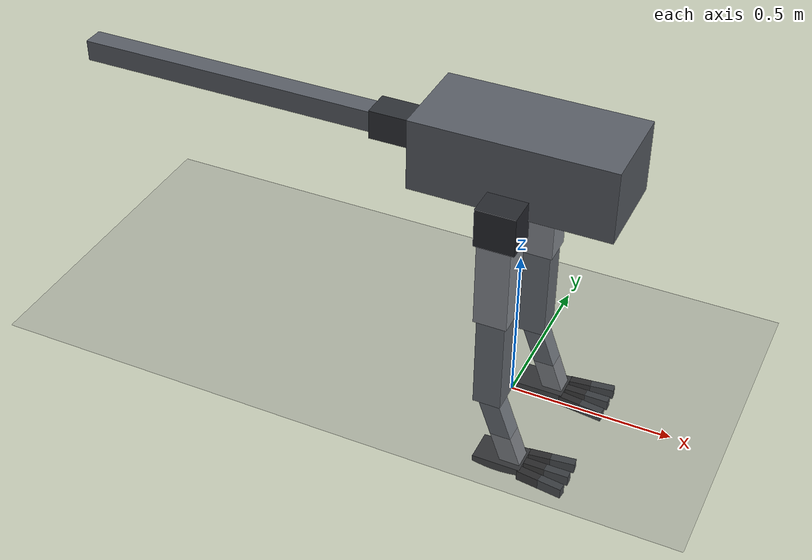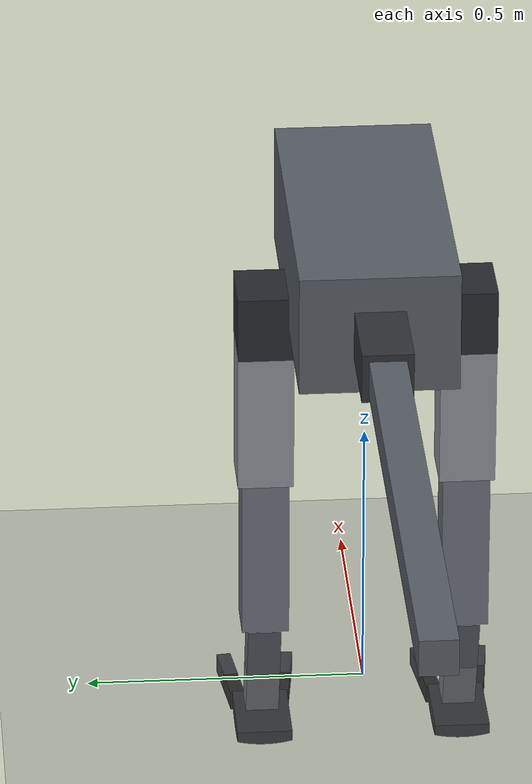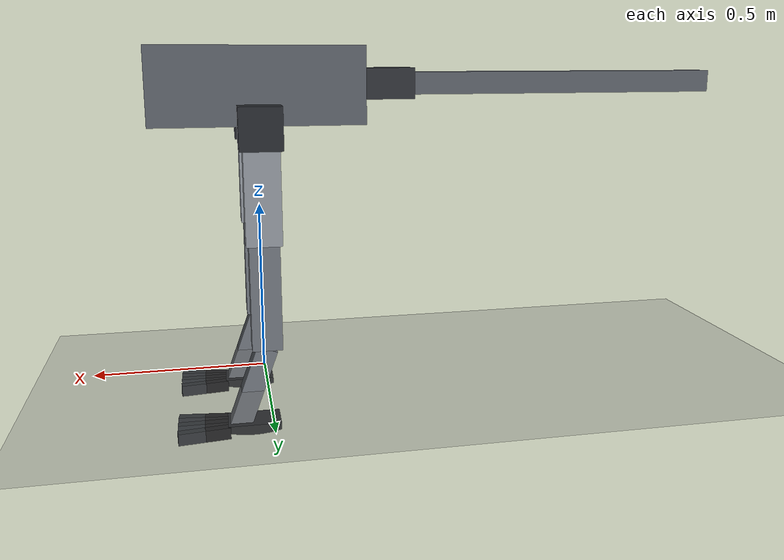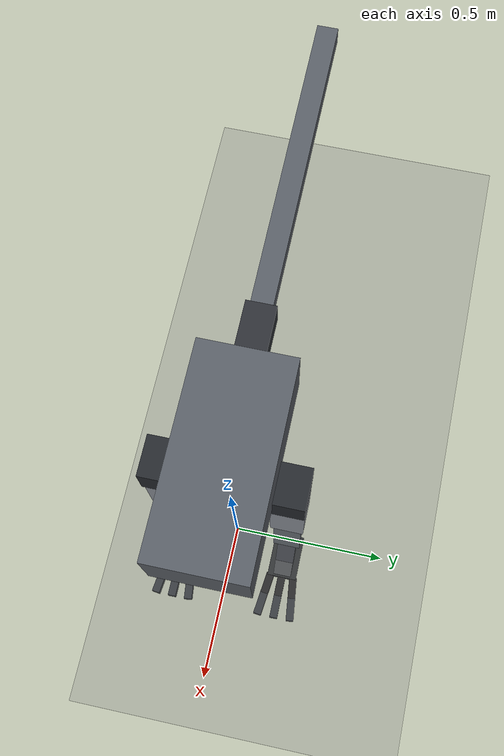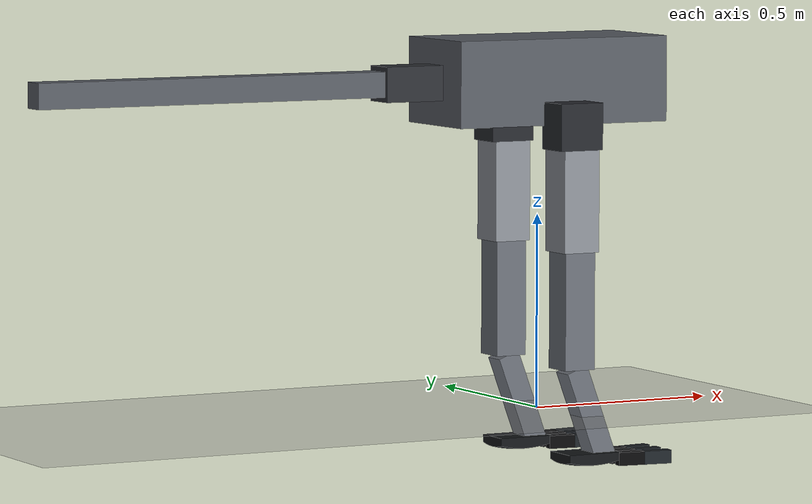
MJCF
<!-- Generated by sim/build_model.py from URDF sha256:a0a1e8f9e408b5f4. Do not edit. -->
<mujoco model="raptor">
  <compiler angle="radian"/>

  <option timestep="0.001" integrator="implicitfast" cone="elliptic"/>

  <asset>
    <mesh name="rocker_pad" file="../src/raptor_description/meshes/foot/rocker_pad.stl"/>
  </asset>

  <worldbody>
    <geom name="floor" size="0 0 0.05" type="plane"/>
    <body name="base_root">
      <joint name="floating_base" type="free"/>
      <body name="base_link" pos="0 0 0.85">
        <inertial pos="0 0 0" quat="0 0.707107 0 0.707107" mass="8" diaginertia="0.2923 0.2691 0.0843"/>
        <geom size="0.3 0.14 0.11" type="box" conaffinity="0" rgba="0.35 0.37 0.4 1"/>
        <site name="imu"/>
        <body name="left_hip_roll_link" pos="0 0.18 -0.05">
          <inertial pos="0 0 -0.06" mass="0.8" diaginertia="0.0016 0.0016 0.0013"/>
          <joint name="left_hip_roll_joint" range="-0.5 0.5" actuatorfrcrange="-80 80" axis="1 0 0"/>
          <geom size="0.06 0.05 0.06" pos="0 0 -0.06" type="box" conaffinity="0" rgba="0.15 0.16 0.18 1"/>
          <body name="left_thigh_link" pos="0 0 -0.12">
            <inertial pos="0 0 -0.13" mass="1.5" diaginertia="0.0097 0.0097 0.0025"/>
            <joint name="left_hip_pitch_joint" range="-1.2 0.8" actuatorfrcrange="-100 100" axis="0 1 0"/>
            <geom size="0.05 0.05 0.13" pos="0 0 -0.13" type="box" conaffinity="0" rgba="0.55 0.57 0.6 1"/>
            <body name="left_shin_link" pos="0 0 -0.26">
              <inertial pos="0 0 -0.15" mass="1.1" diaginertia="0.00891229 0.00891229 0.0013"/>
              <joint name="left_knee_pitch_joint" range="0 2.2" actuatorfrcrange="-120 120" axis="0 1 0"/>
              <geom size="0.0425 0.0425 0.15" pos="0 0 -0.15" type="box" conaffinity="0" rgba="0.42 0.44 0.47 1"/>
              <body name="left_metatarsus_link" pos="0 0 -0.3">
                <inertial pos="0.0411477 0 -0.112725" mass="0.15" diaginertia="0.000765 0.000765 9e-05"/>
                <joint name="left_ankle_pitch_joint" range="-0.7 0.7" actuatorfrcrange="-80 80" axis="0 1 0"/>
                <geom size="0.03 0.03 0.12" pos="0.0411477 0 -0.112725" quat="0.984727 0 -0.174108 0" type="box" conaffinity="0" rgba="0.42 0.44 0.47 1"/>
                <body name="left_foot_link" pos="0.0822955 0 -0.225449">
                  <inertial pos="-0.04 0 -0.0075" quat="0 0.707107 0 0.707107" mass="0.15" diaginertia="0.00040625 0.000296563 0.000140313"/>
                  <joint name="left_ankle_roll_joint" range="-0.5 0.5" actuatorfrcrange="-60 60" armature="0.01" axis="1 0 0"/>
                  <geom pos="-0.04 0 -0.0075" quat="1 0 0 0" type="mesh" conaffinity="0" condim="4" friction="1 0.01" rgba="0.08 0.09 0.1 1" mesh="rocker_pad"/>
                  <body name="left_toe_1_proximal_link" pos="0.03 0.04 -0.008" quat="0.998201 0 0 0.059964">
                    <inertial pos="0.035 0 0" quat="0.5 0.5 0.5 0.5" mass="0.05" diaginertia="2.52333e-05 2.32333e-05 7.63333e-06"/>
                    <joint name="left_toe_1_proximal_joint" stiffness="12" range="-0.55 0.65" actuatorfrcrange="-5 5" damping="0.08" frictionloss="0.005" axis="0 1 0"/>
                    <geom size="0.035 0.013 0.017" pos="0.035 0 0" type="box" conaffinity="0" priority="1" friction="0.8" rgba="0.035 0.035 0.04 1"/>
                    <body name="left_toe_1_distal_link" pos="0.07 0 0">
                      <inertial pos="0.0375 0 0" quat="0.5 0.5 0.5 0.5" mass="0.05" diaginertia="2.82542e-05 2.62542e-05 7.63333e-06"/>
                      <joint name="left_toe_1_distal_joint" stiffness="8" range="-0.55 0.65" actuatorfrcrange="-5 5" damping="0.08" frictionloss="0.005" axis="0 1 0"/>
                      <geom size="0.0375 0.013 0.017" pos="0.0375 0 0" type="box" conaffinity="0" priority="1" friction="0.8" rgba="0.12 0.14 0.16 1"/>
                    </body>
                  </body>
                  <body name="left_toe_2_proximal_link" pos="0.03 0 -0.008">
                    <inertial pos="0.035 0 0" quat="0.5 0.5 0.5 0.5" mass="0.05" diaginertia="2.52333e-05 2.32333e-05 7.63333e-06"/>
                    <joint name="left_toe_2_proximal_joint" stiffness="12" range="-0.55 0.65" actuatorfrcrange="-5 5" damping="0.08" frictionloss="0.005" axis="0 1 0"/>
                    <geom size="0.035 0.013 0.017" pos="0.035 0 0" type="box" conaffinity="0" priority="1" friction="0.8" rgba="0.035 0.035 0.04 1"/>
                    <body name="left_toe_2_distal_link" pos="0.07 0 0">
                      <inertial pos="0.0375 0 0" quat="0.5 0.5 0.5 0.5" mass="0.05" diaginertia="2.82542e-05 2.62542e-05 7.63333e-06"/>
                      <joint name="left_toe_2_distal_joint" stiffness="8" range="-0.55 0.65" actuatorfrcrange="-5 5" damping="0.08" frictionloss="0.005" axis="0 1 0"/>
                      <geom size="0.0375 0.013 0.017" pos="0.0375 0 0" type="box" conaffinity="0" priority="1" friction="0.8" rgba="0.12 0.14 0.16 1"/>
                    </body>
                  </body>
                  <body name="left_toe_3_proximal_link" pos="0.03 -0.04 -0.008" quat="0.998201 0 0 -0.059964">
                    <inertial pos="0.035 0 0" quat="0.5 0.5 0.5 0.5" mass="0.05" diaginertia="2.52333e-05 2.32333e-05 7.63333e-06"/>
                    <joint name="left_toe_3_proximal_joint" stiffness="12" range="-0.55 0.65" actuatorfrcrange="-5 5" damping="0.08" frictionloss="0.005" axis="0 1 0"/>
                    <geom size="0.035 0.013 0.017" pos="0.035 0 0" type="box" conaffinity="0" priority="1" friction="0.8" rgba="0.035 0.035 0.04 1"/>
                    <body name="left_toe_3_distal_link" pos="0.07 0 0">
                      <inertial pos="0.0375 0 0" quat="0.5 0.5 0.5 0.5" mass="0.05" diaginertia="2.82542e-05 2.62542e-05 7.63333e-06"/>
                      <joint name="left_toe_3_distal_joint" stiffness="8" range="-0.55 0.65" actuatorfrcrange="-5 5" damping="0.08" frictionloss="0.005" axis="0 1 0"/>
                      <geom size="0.0375 0.013 0.017" pos="0.0375 0 0" type="box" conaffinity="0" priority="1" friction="0.8" rgba="0.12 0.14 0.16 1"/>
                    </body>
                  </body>
                </body>
              </body>
            </body>
          </body>
        </body>
        <body name="right_hip_roll_link" pos="0 -0.18 -0.05">
          <inertial pos="0 0 -0.06" mass="0.8" diaginertia="0.0016 0.0016 0.0013"/>
          <joint name="right_hip_roll_joint" range="-0.5 0.5" actuatorfrcrange="-80 80" axis="-1 0 0"/>
          <geom size="0.06 0.05 0.06" pos="0 0 -0.06" type="box" conaffinity="0" rgba="0.15 0.16 0.18 1"/>
          <body name="right_thigh_link" pos="0 0 -0.12">
            <inertial pos="0 0 -0.13" mass="1.5" diaginertia="0.0097 0.0097 0.0025"/>
            <joint name="right_hip_pitch_joint" range="-1.2 0.8" actuatorfrcrange="-100 100" axis="0 1 0"/>
            <geom size="0.05 0.05 0.13" pos="0 0 -0.13" type="box" conaffinity="0" rgba="0.55 0.57 0.6 1"/>
            <body name="right_shin_link" pos="0 0 -0.26">
              <inertial pos="0 0 -0.15" mass="1.1" diaginertia="0.00891229 0.00891229 0.0013"/>
              <joint name="right_knee_pitch_joint" range="0 2.2" actuatorfrcrange="-120 120" axis="0 1 0"/>
              <geom size="0.0425 0.0425 0.15" pos="0 0 -0.15" type="box" conaffinity="0" rgba="0.42 0.44 0.47 1"/>
              <body name="right_metatarsus_link" pos="0 0 -0.3">
                <inertial pos="0.0411477 0 -0.112725" mass="0.15" diaginertia="0.000765 0.000765 9e-05"/>
                <joint name="right_ankle_pitch_joint" range="-0.7 0.7" actuatorfrcrange="-80 80" axis="0 1 0"/>
                <geom size="0.03 0.03 0.12" pos="0.0411477 0 -0.112725" quat="0.984727 0 -0.174108 0" type="box" conaffinity="0" rgba="0.42 0.44 0.47 1"/>
                <body name="right_foot_link" pos="0.0822955 0 -0.225449">
                  <inertial pos="-0.04 0 -0.0075" quat="0 0.707107 0 0.707107" mass="0.15" diaginertia="0.00040625 0.000296563 0.000140313"/>
                  <joint name="right_ankle_roll_joint" range="-0.5 0.5" actuatorfrcrange="-60 60" armature="0.01" axis="1 0 0"/>
                  <geom pos="-0.04 0 -0.0075" quat="1 0 0 0" type="mesh" conaffinity="0" condim="4" friction="1 0.01" rgba="0.08 0.09 0.1 1" mesh="rocker_pad"/>
                  <body name="right_toe_1_proximal_link" pos="0.03 0.04 -0.008" quat="0.998201 0 0 0.059964">
                    <inertial pos="0.035 0 0" quat="0.5 0.5 0.5 0.5" mass="0.05" diaginertia="2.52333e-05 2.32333e-05 7.63333e-06"/>
                    <joint name="right_toe_1_proximal_joint" stiffness="12" range="-0.55 0.65" actuatorfrcrange="-5 5" damping="0.08" frictionloss="0.005" axis="0 1 0"/>
                    <geom size="0.035 0.013 0.017" pos="0.035 0 0" type="box" conaffinity="0" priority="1" friction="0.8" rgba="0.035 0.035 0.04 1"/>
                    <body name="right_toe_1_distal_link" pos="0.07 0 0">
                      <inertial pos="0.0375 0 0" quat="0.5 0.5 0.5 0.5" mass="0.05" diaginertia="2.82542e-05 2.62542e-05 7.63333e-06"/>
                      <joint name="right_toe_1_distal_joint" stiffness="8" range="-0.55 0.65" actuatorfrcrange="-5 5" damping="0.08" frictionloss="0.005" axis="0 1 0"/>
                      <geom size="0.0375 0.013 0.017" pos="0.0375 0 0" type="box" conaffinity="0" priority="1" friction="0.8" rgba="0.12 0.14 0.16 1"/>
                    </body>
                  </body>
                  <body name="right_toe_2_proximal_link" pos="0.03 0 -0.008">
                    <inertial pos="0.035 0 0" quat="0.5 0.5 0.5 0.5" mass="0.05" diaginertia="2.52333e-05 2.32333e-05 7.63333e-06"/>
                    <joint name="right_toe_2_proximal_joint" stiffness="12" range="-0.55 0.65" actuatorfrcrange="-5 5" damping="0.08" frictionloss="0.005" axis="0 1 0"/>
                    <geom size="0.035 0.013 0.017" pos="0.035 0 0" type="box" conaffinity="0" priority="1" friction="0.8" rgba="0.035 0.035 0.04 1"/>
                    <body name="right_toe_2_distal_link" pos="0.07 0 0">
                      <inertial pos="0.0375 0 0" quat="0.5 0.5 0.5 0.5" mass="0.05" diaginertia="2.82542e-05 2.62542e-05 7.63333e-06"/>
                      <joint name="right_toe_2_distal_joint" stiffness="8" range="-0.55 0.65" actuatorfrcrange="-5 5" damping="0.08" frictionloss="0.005" axis="0 1 0"/>
                      <geom size="0.0375 0.013 0.017" pos="0.0375 0 0" type="box" conaffinity="0" priority="1" friction="0.8" rgba="0.12 0.14 0.16 1"/>
                    </body>
                  </body>
                  <body name="right_toe_3_proximal_link" pos="0.03 -0.04 -0.008" quat="0.998201 0 0 -0.059964">
                    <inertial pos="0.035 0 0" quat="0.5 0.5 0.5 0.5" mass="0.05" diaginertia="2.52333e-05 2.32333e-05 7.63333e-06"/>
                    <joint name="right_toe_3_proximal_joint" stiffness="12" range="-0.55 0.65" actuatorfrcrange="-5 5" damping="0.08" frictionloss="0.005" axis="0 1 0"/>
                    <geom size="0.035 0.013 0.017" pos="0.035 0 0" type="box" conaffinity="0" priority="1" friction="0.8" rgba="0.035 0.035 0.04 1"/>
                    <body name="right_toe_3_distal_link" pos="0.07 0 0">
                      <inertial pos="0.0375 0 0" quat="0.5 0.5 0.5 0.5" mass="0.05" diaginertia="2.82542e-05 2.62542e-05 7.63333e-06"/>
                      <joint name="right_toe_3_distal_joint" stiffness="8" range="-0.55 0.65" actuatorfrcrange="-5 5" damping="0.08" frictionloss="0.005" axis="0 1 0"/>
                      <geom size="0.0375 0.013 0.017" pos="0.0375 0 0" type="box" conaffinity="0" priority="1" friction="0.8" rgba="0.12 0.14 0.16 1"/>
                    </body>
                  </body>
                </body>
              </body>
            </body>
          </body>
        </body>
        <body name="tail_yaw_link" pos="-0.3 0 0">
          <inertial pos="-0.08 0 0" quat="0.5 0.5 0.5 0.5" mass="0.5" diaginertia="0.0014 0.0014 0.0007"/>
          <joint name="tail_yaw_joint" range="-0.8 0.8" actuatorfrcrange="-50 50"/>
          <geom size="0.08 0.045 0.045" pos="-0.08 0 0" type="box" conaffinity="0" rgba="0.18 0.19 0.21 1"/>
          <body name="tail_link" pos="-0.16 0 0">
            <inertial pos="-0.475 0 0" quat="0.5 0.5 0.5 0.5" mass="0.8" diaginertia="0.0604483 0.0604483 0.000563333"/>
            <joint name="tail_pitch_joint" range="-0.6 0.6" actuatorfrcrange="-50 50" axis="0 1 0"/>
            <geom size="0.475 0.0325 0.0325" pos="-0.475 0 0" type="box" conaffinity="0" rgba="0.35 0.37 0.4 1"/>
          </body>
        </body>
      </body>
    </body>
  </worldbody>

  <actuator>
    <general name="left_hip_roll_joint" joint="left_hip_roll_joint" ctrlrange="-2 2" ctrllimited="true" forcelimited="true" forcerange="-80 80" biastype="affine" gainprm="100" biasprm="0 0 -100"/>
    <general name="left_hip_pitch_joint" joint="left_hip_pitch_joint" ctrlrange="-2.5 2.5" ctrllimited="true" forcelimited="true" forcerange="-100 100" biastype="affine" gainprm="100" biasprm="0 0 -100"/>
    <general name="left_knee_pitch_joint" joint="left_knee_pitch_joint" ctrlrange="-3 3" ctrllimited="true" forcelimited="true" forcerange="-120 120" biastype="affine" gainprm="100" biasprm="0 0 -100"/>
    <general name="left_ankle_pitch_joint" joint="left_ankle_pitch_joint" ctrlrange="-2.5 2.5" ctrllimited="true" forcelimited="true" forcerange="-80 80" biastype="affine" gainprm="100" biasprm="0 0 -100"/>
    <general name="left_ankle_roll_joint" joint="left_ankle_roll_joint" ctrlrange="-2.5 2.5" ctrllimited="true" forcelimited="true" forcerange="-60 60" biastype="affine" gainprm="100" biasprm="0 0 -100"/>
    <general name="right_hip_roll_joint" joint="right_hip_roll_joint" ctrlrange="-2 2" ctrllimited="true" forcelimited="true" forcerange="-80 80" biastype="affine" gainprm="100" biasprm="0 0 -100"/>
    <general name="right_hip_pitch_joint" joint="right_hip_pitch_joint" ctrlrange="-2.5 2.5" ctrllimited="true" forcelimited="true" forcerange="-100 100" biastype="affine" gainprm="100" biasprm="0 0 -100"/>
    <general name="right_knee_pitch_joint" joint="right_knee_pitch_joint" ctrlrange="-3 3" ctrllimited="true" forcelimited="true" forcerange="-120 120" biastype="affine" gainprm="100" biasprm="0 0 -100"/>
    <general name="right_ankle_pitch_joint" joint="right_ankle_pitch_joint" ctrlrange="-2.5 2.5" ctrllimited="true" forcelimited="true" forcerange="-80 80" biastype="affine" gainprm="100" biasprm="0 0 -100"/>
    <general name="right_ankle_roll_joint" joint="right_ankle_roll_joint" ctrlrange="-2.5 2.5" ctrllimited="true" forcelimited="true" forcerange="-60 60" biastype="affine" gainprm="100" biasprm="0 0 -100"/>
    <general name="tail_yaw_joint" joint="tail_yaw_joint" ctrlrange="-2 2" ctrllimited="true" forcelimited="true" forcerange="-50 50" biastype="affine" gainprm="100" biasprm="0 0 -100"/>
    <general name="tail_pitch_joint" joint="tail_pitch_joint" ctrlrange="-2 2" ctrllimited="true" forcelimited="true" forcerange="-50 50" biastype="affine" gainprm="100" biasprm="0 0 -100"/>
  </actuator>

  <sensor>
    <framequat objtype="site" objname="imu" name="imu_quat"/>
    <gyro site="imu" name="imu_gyro"/>
  </sensor>
</mujoco>
